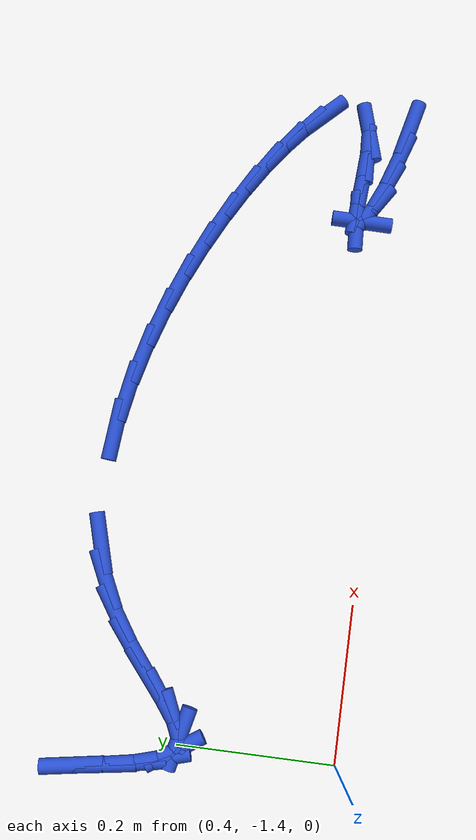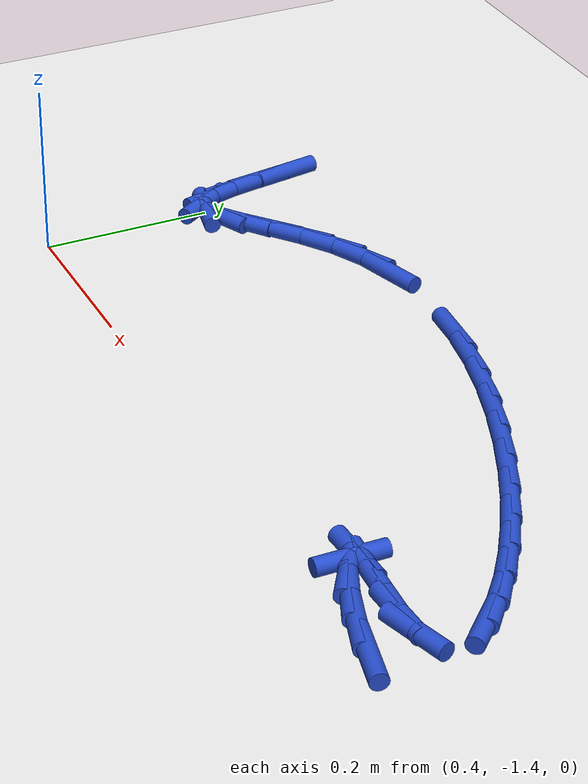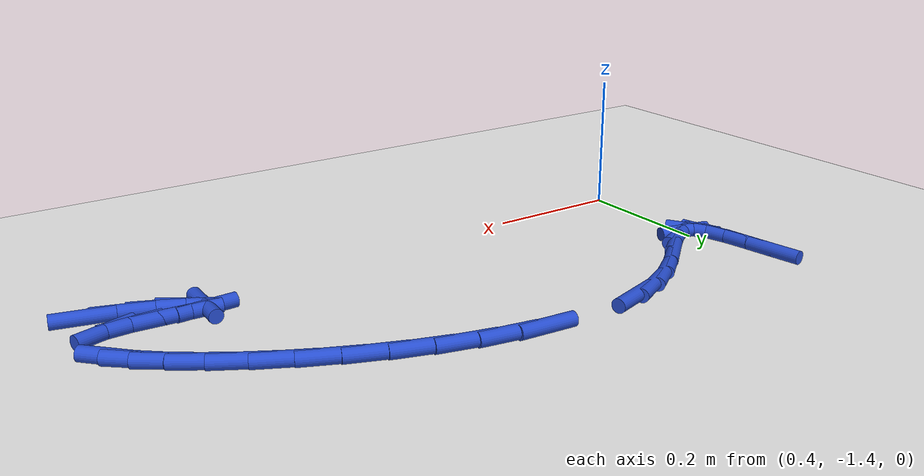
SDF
<sdf version="1.6">
 <world name="default">
  <model name="ground_plane">
   <static>1</static>
   <link name="link">
    <collision name="collision">
     <geometry><plane><normal>0 0 1</normal><size>100 100</size></plane></geometry>
     <surface><friction><ode><mu>100</mu><mu2>50</mu2></ode></friction></surface>
    </collision>
    <visual name="visual">
     <cast_shadows>0</cast_shadows>
     <geometry><plane><normal>0 0 1</normal><size>100 100</size></plane></geometry>
     <material>
      <script><uri>file://media/materials/scripts/gazebo.material</uri><name>Gazebo/WhiteGlow</name></script>
     </material>
    </visual>
   </link>
  </model>
  <model name="line">
   <link name="link_205">
    <pose>1.2406838379766012 -1.4034832694071147 0.01 0 1.57 -0.23003713052321906</pose>
    <collision name="collision">
     <geometry><cylinder><radius>0.01</radius><length>0.08</length></cylinder></geometry>
    </collision>
    <visual name="visual">
     <material>
      <script><name>Gazebo/Blue</name><uri>file://media/materials/scripts/gazebo.material</uri></script>
     </material>
     <geometry><cylinder><radius>0.01</radius><length>0.08</length></cylinder></geometry>
    </visual>
   </link>
   <link name="link_206">
    <pose>1.1949501878050808 -1.3927732475574988 0.01 0 1.57 -0.31588654695063373</pose>
    <collision name="collision">
     <geometry><cylinder><radius>0.01</radius><length>0.08</length></cylinder></geometry>
    </collision>
    <visual name="visual">
     <material>
      <script><name>Gazebo/Blue</name><uri>file://media/materials/scripts/gazebo.material</uri></script>
     </material>
     <geometry><cylinder><radius>0.01</radius><length>0.08</length></cylinder></geometry>
    </visual>
   </link>
   <link name="link_207">
    <pose>1.153819003245274 -1.379330325807001 0.01 0 1.57 -0.406851051054928</pose>
    <collision name="collision">
     <geometry><cylinder><radius>0.01</radius><length>0.08</length></cylinder></geometry>
    </collision>
    <visual name="visual">
     <material>
      <script><name>Gazebo/Blue</name><uri>file://media/materials/scripts/gazebo.material</uri></script>
     </material>
     <geometry><cylinder><radius>0.01</radius><length>0.08</length></cylinder></geometry>
    </visual>
   </link>
   <link name="link_208">
    <pose>1.1218637547412165 -1.3655610485635457 0.01 0 1.57 -0.5707672194078945</pose>
    <collision name="collision">
     <geometry><cylinder><radius>0.01</radius><length>0.08</length></cylinder></geometry>
    </collision>
    <visual name="visual">
     <material>
      <script><name>Gazebo/Blue</name><uri>file://media/materials/scripts/gazebo.material</uri></script>
     </material>
     <geometry><cylinder><radius>0.01</radius><length>0.08</length></cylinder></geometry>
    </visual>
   </link>
   <link name="link_209">
    <pose>1.1036579127369475 -1.353871960235059 0.01 0 1.57 1.554548219034435</pose>
    <collision name="collision">
     <geometry><cylinder><radius>0.01</radius><length>0.08</length></cylinder></geometry>
    </collision>
    <visual name="visual">
     <material>
      <script><name>Gazebo/Blue</name><uri>file://media/materials/scripts/gazebo.material</uri></script>
     </material>
     <geometry><cylinder><radius>0.01</radius><length>0.08</length></cylinder></geometry>
    </visual>
   </link>
   <link name="link_210">
    <pose>1.1037749476765026 -1.3466696052294655 0.01 0 1.57 0.049439931127779925</pose>
    <collision name="collision">
     <geometry><cylinder><radius>0.01</radius><length>0.08</length></cylinder></geometry>
    </collision>
    <visual name="visual">
     <material>
      <script><name>Gazebo/Blue</name><uri>file://media/materials/scripts/gazebo.material</uri></script>
     </material>
     <geometry><cylinder><radius>0.01</radius><length>0.08</length></cylinder></geometry>
    </visual>
   </link>
   <link name="link_211">
    <pose>1.1249832700631484 -1.3456202120790397 0.01 0 1.57 -0.075694271353956</pose>
    <collision name="collision">
     <geometry><cylinder><radius>0.01</radius><length>0.08</length></cylinder></geometry>
    </collision>
    <visual name="visual">
     <material>
      <script><name>Gazebo/Blue</name><uri>file://media/materials/scripts/gazebo.material</uri></script>
     </material>
     <geometry><cylinder><radius>0.01</radius><length>0.08</length></cylinder></geometry>
    </visual>
   </link>
   <link name="link_212">
    <pose>1.1600245747828266 -1.3482777155442658 0.01 0 1.57 -0.06539486443536952</pose>
    <collision name="collision">
     <geometry><cylinder><radius>0.01</radius><length>0.08</length></cylinder></geometry>
    </collision>
    <visual name="visual">
     <material>
      <script><name>Gazebo/Blue</name><uri>file://media/materials/scripts/gazebo.material</uri></script>
     </material>
     <geometry><cylinder><radius>0.01</radius><length>0.08</length></cylinder></geometry>
    </visual>
   </link>
   <link name="link_213">
    <pose>1.1981790942246533 -1.35077638803454 0.01 0 1.57 0.041271908661568796</pose>
    <collision name="collision">
     <geometry><cylinder><radius>0.01</radius><length>0.08</length></cylinder></geometry>
    </collision>
    <visual name="visual">
     <material>
      <script><name>Gazebo/Blue</name><uri>file://media/materials/scripts/gazebo.material</uri></script>
     </material>
     <geometry><cylinder><radius>0.01</radius><length>0.08</length></cylinder></geometry>
    </visual>
   </link>
   <link name="link_214">
    <pose>1.2293412685790979 -1.3494895348753555 0.01 0 1.57 0.28609031663819484</pose>
    <collision name="collision">
     <geometry><cylinder><radius>0.01</radius><length>0.08</length></cylinder></geometry>
    </collision>
    <visual name="visual">
     <material>
      <script><name>Gazebo/Blue</name><uri>file://media/materials/scripts/gazebo.material</uri></script>
     </material>
     <geometry><cylinder><radius>0.01</radius><length>0.08</length></cylinder></geometry>
    </visual>
   </link>
   <link name="link_219">
    <pose>1.242355946268724 -1.2822675353723871 0.01 0 1.57 -0.7966669895648342</pose>
    <collision name="collision">
     <geometry><cylinder><radius>0.01</radius><length>0.08</length></cylinder></geometry>
    </collision>
    <visual name="visual">
     <material>
      <script><name>Gazebo/Blue</name><uri>file://media/materials/scripts/gazebo.material</uri></script>
     </material>
     <geometry><cylinder><radius>0.01</radius><length>0.08</length></cylinder></geometry>
    </visual>
   </link>
   <link name="link_220">
    <pose>1.2212877990166922 -1.2607191292596747 0.01 0 1.57 -0.6976043425978147</pose>
    <collision name="collision">
     <geometry><cylinder><radius>0.01</radius><length>0.08</length></cylinder></geometry>
    </collision>
    <visual name="visual">
     <material>
      <script><name>Gazebo/Blue</name><uri>file://media/materials/scripts/gazebo.material</uri></script>
     </material>
     <geometry><cylinder><radius>0.01</radius><length>0.08</length></cylinder></geometry>
    </visual>
   </link>
   <link name="link_221">
    <pose>1.1939781601436925 -1.2378281527141202 0.01 0 1.57 -0.6240871981795133</pose>
    <collision name="collision">
     <geometry><cylinder><radius>0.01</radius><length>0.08</length></cylinder></geometry>
    </collision>
    <visual name="visual">
     <material>
      <script><name>Gazebo/Blue</name><uri>file://media/materials/scripts/gazebo.material</uri></script>
     </material>
     <geometry><cylinder><radius>0.01</radius><length>0.08</length></cylinder></geometry>
    </visual>
   </link>
   <link name="link_222">
    <pose>1.161133687925018 -1.2141769335805226 0.01 0 1.57 -0.5639968602068983</pose>
    <collision name="collision">
     <geometry><cylinder><radius>0.01</radius><length>0.08</length></cylinder></geometry>
    </collision>
    <visual name="visual">
     <material>
      <script><name>Gazebo/Blue</name><uri>file://media/materials/scripts/gazebo.material</uri></script>
     </material>
     <geometry><cylinder><radius>0.01</radius><length>0.08</length></cylinder></geometry>
    </visual>
   </link>
   <link name="link_223">
    <pose>1.1234610406359624 -1.1903477997036807 0.01 0 1.57 -0.5108523386066361</pose>
    <collision name="collision">
     <geometry><cylinder><radius>0.01</radius><length>0.08</length></cylinder></geometry>
    </collision>
    <visual name="visual">
     <material>
      <script><name>Gazebo/Blue</name><uri>file://media/materials/scripts/gazebo.material</uri></script>
     </material>
     <geometry><cylinder><radius>0.01</radius><length>0.08</length></cylinder></geometry>
    </visual>
   </link>
   <link name="link_224">
    <pose>1.081666876551819 -1.1669230789283942 0.01 0 1.57 -0.46069639767637516</pose>
    <collision name="collision">
     <geometry><cylinder><radius>0.01</radius><length>0.08</length></cylinder></geometry>
    </collision>
    <visual name="visual">
     <material>
      <script><name>Gazebo/Blue</name><uri>file://media/materials/scripts/gazebo.material</uri></script>
     </material>
     <geometry><cylinder><radius>0.01</radius><length>0.08</length></cylinder></geometry>
    </visual>
   </link>
   <link name="link_225">
    <pose>1.0364578539478813 -1.144485099099462 0.01 0 1.57 -0.4107473698629605</pose>
    <collision name="collision">
     <geometry><cylinder><radius>0.01</radius><length>0.08</length></cylinder></geometry>
    </collision>
    <visual name="visual">
     <material>
      <script><name>Gazebo/Blue</name><uri>file://media/materials/scripts/gazebo.material</uri></script>
     </material>
     <geometry><cylinder><radius>0.01</radius><length>0.08</length></cylinder></geometry>
    </visual>
   </link>
   <link name="link_226">
    <pose>0.9885406310994407 -1.1236161880616813 0.01 0 1.57 -0.3587351507452853</pose>
    <collision name="collision">
     <geometry><cylinder><radius>0.01</radius><length>0.08</length></cylinder></geometry>
    </collision>
    <visual name="visual">
     <material>
      <script><name>Gazebo/Blue</name><uri>file://media/materials/scripts/gazebo.material</uri></script>
     </material>
     <geometry><cylinder><radius>0.01</radius><length>0.08</length></cylinder></geometry>
    </visual>
   </link>
   <link name="link_227">
    <pose>0.9386218662817939 -1.1048986736598536 0.01 0 1.57 -0.3025205959304751</pose>
    <collision name="collision">
     <geometry><cylinder><radius>0.01</radius><length>0.08</length></cylinder></geometry>
    </collision>
    <visual name="visual">
     <material>
      <script><name>Gazebo/Blue</name><uri>file://media/materials/scripts/gazebo.material</uri></script>
     </material>
     <geometry><cylinder><radius>0.01</radius><length>0.08</length></cylinder></geometry>
    </visual>
   </link>
   <link name="link_228">
    <pose>0.8874082177702328 -1.0889148837387772 0.01 0 1.57 -0.23983522992533354</pose>
    <collision name="collision">
     <geometry><cylinder><radius>0.01</radius><length>0.08</length></cylinder></geometry>
    </collision>
    <visual name="visual">
     <material>
      <script><name>Gazebo/Blue</name><uri>file://media/materials/scripts/gazebo.material</uri></script>
     </material>
     <geometry><cylinder><radius>0.01</radius><length>0.08</length></cylinder></geometry>
    </visual>
   </link>
   <link name="link_229">
    <pose>0.8356063438400505 -1.0762471461432506 0.01 0 1.57 -0.1680736964075009</pose>
    <collision name="collision">
     <geometry><cylinder><radius>0.01</radius><length>0.08</length></cylinder></geometry>
    </collision>
    <visual name="visual">
     <material>
      <script><name>Gazebo/Blue</name><uri>file://media/materials/scripts/gazebo.material</uri></script>
     </material>
     <geometry><cylinder><radius>0.01</radius><length>0.08</length></cylinder></geometry>
    </visual>
   </link>
   <link name="link_230">
    <pose>0.7839229027665406 -1.0674777887180729 0.01 0 1.57 -0.08412635028789366</pose>
    <collision name="collision">
     <geometry><cylinder><radius>0.01</radius><length>0.08</length></cylinder></geometry>
    </collision>
    <visual name="visual">
     <material>
      <script><name>Gazebo/Blue</name><uri>file://media/materials/scripts/gazebo.material</uri></script>
     </material>
     <geometry><cylinder><radius>0.01</radius><length>0.08</length></cylinder></geometry>
    </visual>
   </link>
   <link name="link_233">
    <pose>0.6366497594389781 -1.0703832759126235 0.01 0 1.57 0.279035047791974</pose>
    <collision name="collision">
     <geometry><cylinder><radius>0.01</radius><length>0.08</length></cylinder></geometry>
    </collision>
    <visual name="visual">
     <material>
      <script><name>Gazebo/Blue</name><uri>file://media/materials/scripts/gazebo.material</uri></script>
     </material>
     <geometry><cylinder><radius>0.01</radius><length>0.08</length></cylinder></geometry>
    </visual>
   </link>
   <link name="link_234">
    <pose>0.5925066325450896 -1.0830307176168321 0.01 0 1.57 0.4443424726338964</pose>
    <collision name="collision">
     <geometry><cylinder><radius>0.01</radius><length>0.08</length></cylinder></geometry>
    </collision>
    <visual name="visual">
     <material>
      <script><name>Gazebo/Blue</name><uri>file://media/materials/scripts/gazebo.material</uri></script>
     </material>
     <geometry><cylinder><radius>0.01</radius><length>0.08</length></cylinder></geometry>
    </visual>
   </link>
   <link name="link_235">
    <pose>0.5519888943910122 -1.1023210645227886 0.01 0 1.57 0.5828572249417786</pose>
    <collision name="collision">
     <geometry><cylinder><radius>0.01</radius><length>0.08</length></cylinder></geometry>
    </collision>
    <visual name="visual">
     <material>
      <script><name>Gazebo/Blue</name><uri>file://media/materials/scripts/gazebo.material</uri></script>
     </material>
     <geometry><cylinder><radius>0.01</radius><length>0.08</length></cylinder></geometry>
    </visual>
   </link>
   <link name="link_236">
    <pose>0.5154234935609969 -1.1264271631853198 0.01 0 1.57 0.6645531184796077</pose>
    <collision name="collision">
     <geometry><cylinder><radius>0.01</radius><length>0.08</length></cylinder></geometry>
    </collision>
    <visual name="visual">
     <material>
      <script><name>Gazebo/Blue</name><uri>file://media/materials/scripts/gazebo.material</uri></script>
     </material>
     <geometry><cylinder><radius>0.01</radius><length>0.08</length></cylinder></geometry>
    </visual>
   </link>
   <link name="link_237">
    <pose>0.48288476310855694 -1.1519188660581434 0.01 0 1.57 0.6886864512418734</pose>
    <collision name="collision">
     <geometry><cylinder><radius>0.01</radius><length>0.08</length></cylinder></geometry>
    </collision>
    <visual name="visual">
     <material>
      <script><name>Gazebo/Blue</name><uri>file://media/materials/scripts/gazebo.material</uri></script>
     </material>
     <geometry><cylinder><radius>0.01</radius><length>0.08</length></cylinder></geometry>
    </visual>
   </link>
   <link name="link_238">
    <pose>0.45444156676061587 -1.175331319501355 0.01 0 1.57 0.6344581504309816</pose>
    <collision name="collision">
     <geometry><cylinder><radius>0.01</radius><length>0.08</length></cylinder></geometry>
    </collision>
    <visual name="visual">
     <material>
      <script><name>Gazebo/Blue</name><uri>file://media/materials/scripts/gazebo.material</uri></script>
     </material>
     <geometry><cylinder><radius>0.01</radius><length>0.08</length></cylinder></geometry>
    </visual>
   </link>
   <link name="link_239">
    <pose>0.430162768244097 -1.1931996698750502 0.01 0 1.57 0.4161506228886582</pose>
    <collision name="collision">
     <geometry><cylinder><radius>0.01</radius><length>0.08</length></cylinder></geometry>
    </collision>
    <visual name="visual">
     <material>
      <script><name>Gazebo/Blue</name><uri>file://media/materials/scripts/gazebo.material</uri></script>
     </material>
     <geometry><cylinder><radius>0.01</radius><length>0.08</length></cylinder></geometry>
    </visual>
   </link>
   <link name="link_240">
    <pose>0.4101172312859239 -1.2020590635393242 0.01 0 1.57 -0.22559264253671757</pose>
    <collision name="collision">
     <geometry><cylinder><radius>0.01</radius><length>0.08</length></cylinder></geometry>
    </collision>
    <visual name="visual">
     <material>
      <script><name>Gazebo/Blue</name><uri>file://media/materials/scripts/gazebo.material</uri></script>
     </material>
     <geometry><cylinder><radius>0.01</radius><length>0.08</length></cylinder></geometry>
    </visual>
   </link>
   <link name="link_241">
    <pose>0.3943735997073428 -1.198445913594173 0.01 0 1.57 -0.9941379519290021</pose>
    <collision name="collision">
     <geometry><cylinder><radius>0.01</radius><length>0.08</length></cylinder></geometry>
    </collision>
    <visual name="visual">
     <material>
      <script><name>Gazebo/Blue</name><uri>file://media/materials/scripts/gazebo.material</uri></script>
     </material>
     <geometry><cylinder><radius>0.01</radius><length>0.08</length></cylinder></geometry>
    </visual>
   </link>
   <link name="link_242">
    <pose>0.3827178233973603 -1.18052505714217 0.01 0 1.57 -1.2841588450754042</pose>
    <collision name="collision">
     <geometry><cylinder><radius>0.01</radius><length>0.08</length></cylinder></geometry>
    </collision>
    <visual name="visual">
     <material>
      <script><name>Gazebo/Blue</name><uri>file://media/materials/scripts/gazebo.material</uri></script>
     </material>
     <geometry><cylinder><radius>0.01</radius><length>0.08</length></cylinder></geometry>
    </visual>
   </link>
   <link name="link_243">
    <pose>0.3740987317976027 -1.1512834617743863 0.01 0 1.57 -1.3878460640696164</pose>
    <collision name="collision">
     <geometry><cylinder><radius>0.01</radius><length>0.08</length></cylinder></geometry>
    </collision>
    <visual name="visual">
     <material>
      <script><name>Gazebo/Blue</name><uri>file://media/materials/scripts/gazebo.material</uri></script>
     </material>
     <geometry><cylinder><radius>0.01</radius><length>0.08</length></cylinder></geometry>
    </visual>
   </link>
   <link name="link_244">
    <pose>0.36731093455705205 -1.114596459434202 0.01 0 1.57 -1.4189115471982028</pose>
    <collision name="collision">
     <geometry><cylinder><radius>0.01</radius><length>0.08</length></cylinder></geometry>
    </collision>
    <visual name="visual">
     <material>
      <script><name>Gazebo/Blue</name><uri>file://media/materials/scripts/gazebo.material</uri></script>
     </material>
     <geometry><cylinder><radius>0.01</radius><length>0.08</length></cylinder></geometry>
    </visual>
   </link>
   <link name="link_245">
    <pose>0.3611490413246901 -1.074339382064995 0.01 0 1.57 -1.405310939735682</pose>
    <collision name="collision">
     <geometry><cylinder><radius>0.01</radius><length>0.08</length></cylinder></geometry>
    </collision>
    <visual name="visual">
     <material>
      <script><name>Gazebo/Blue</name><uri>file://media/materials/scripts/gazebo.material</uri></script>
     </material>
     <geometry><cylinder><radius>0.01</radius><length>0.08</length></cylinder></geometry>
    </visual>
   </link>
  </model>
 </world>
</sdf>
